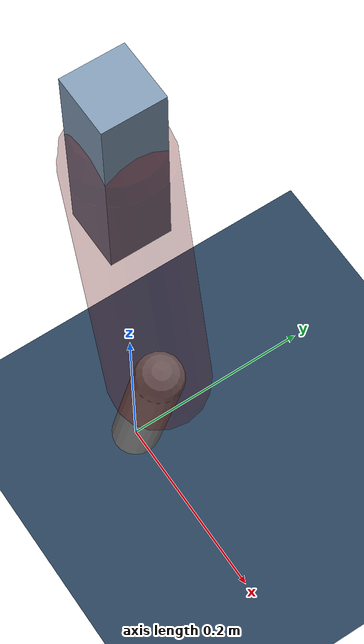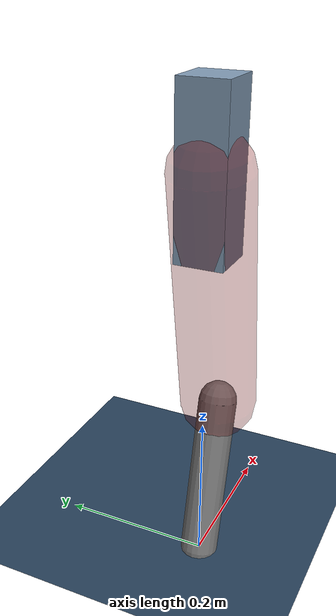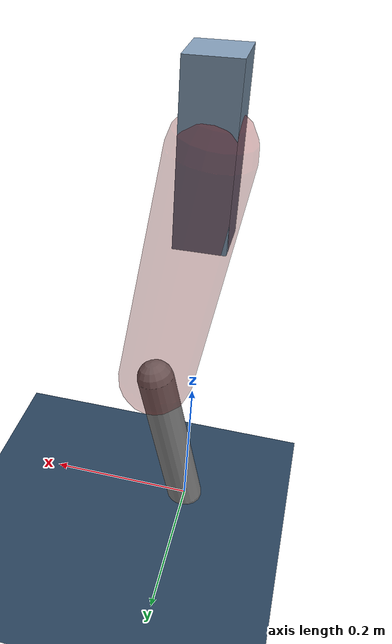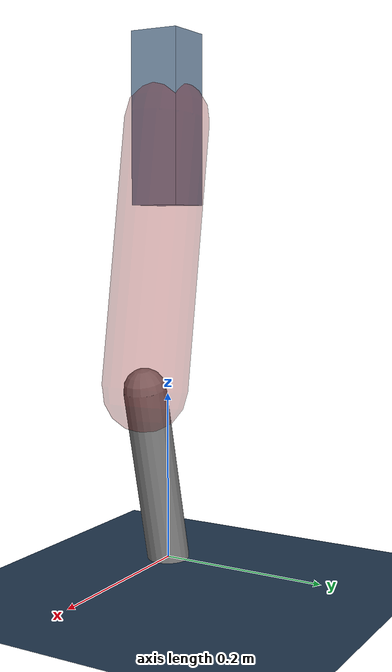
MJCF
<mujoco model="Hopper2D">
	<compiler inertiafromgeom="true" angle="radian" />
	<option timestep="0.001" integrator="implicit" cone="elliptic" solver="Newton" tolerance="1e-10" />

	<default>
		<geom contype="1" conaffinity="1" condim="3" friction="2 0.005 0.0001" solref="0.005 1" />
		<joint limited="true" damping="0.1" />
	</default>

	<asset>
		<texture name="skybox" type="skybox" builtin="gradient" rgb1=".4 .6 .8" rgb2="0 0 0" width="800" height="800" />
		<texture name="grid" type="2d" builtin="checker" rgb1=".1 .2 .3" rgb2=".2 .3 .4" width="300" height="300" mark="edge" markrgb=".2 .3 .4" />
		<material name="ground" texture="grid" texrepeat="1 1" texuniform="true" reflectance="0.1" />
		<material name="leg" rgba="0.5 0.6 0.7 1" />
	</asset>

	<worldbody>

		<geom name="floor" type="plane" size="5 5 0.25" material="ground" />

		<light directional="false" diffuse="0.8 0.8 0.8" specular="0.3 0.3 0.3" pos="0 0 2" dir="0 0 -1" />
		<light mode="targetbodycom" target="base" directional="false" diffuse="0.8 0.8 0.8" specular="0.3 0.3 0.3" pos="0 0 2" dir="0 0 -1" />

		<camera name="fixed" pos="0 -2 1" xyaxes="1 0 0 0 0 1" />
		<camera name="tracking" mode="trackcom" pos="0 -3 1" />

		<body name="root" pos="0 0 0.5241685294429315">
			<joint name="slide_x" type="slide" axis="1 0 0" range="-100 100" />
			<joint name="slide_z" type="slide" axis="0 0 1" range="0 10" />

			<body name="base" pos="0 0 0">
				<geom name="torso" type="box" size="0.03 0.03 0.1" mass="2.1719999999999997" material="leg" />

				<body name="link1" pos="0 0 0" euler="0 1.4104818332281452 0">
					<joint type="hinge" axis="0 -1 0" pos="0 0 0" name="hinge1" limited="true" range="-3.14 3.14" stiffness="0" damping="0.1" />
					<geom name="thigh" type="capsule" fromto="0 0 0 0.3164628995578407 0 0" size="0.05" rgba="0.5 0 0 0.3" mass="1.0335498288061697" />

					<body name="link2" pos="0.3164628995578407 0 0" euler="0 0.3944895520597584 0">
						<joint type="hinge" axis="0 -1 0" pos="0 0 0" name="hinge2" limited="true" range="-3.14 3.14" stiffness="0" damping="0.1" />
						<geom name="shank" type="capsule" fromto="0 0 0 0.21770562988509073 0 0" size="0.025" mass="0.41576450390807257" />

					</body>
				</body>
			</body>
		</body>
	</worldbody>

	<actuator>
		<motor name="torque1" joint="hinge1" ctrlrange="-37.80183144964185 37.80183144964185" ctrllimited="true" gear="1" />
		<motor name="torque2" joint="hinge2" ctrlrange="-19.636660862678674 19.636660862678674" ctrllimited="true" gear="1" />
	</actuator>
</mujoco>
